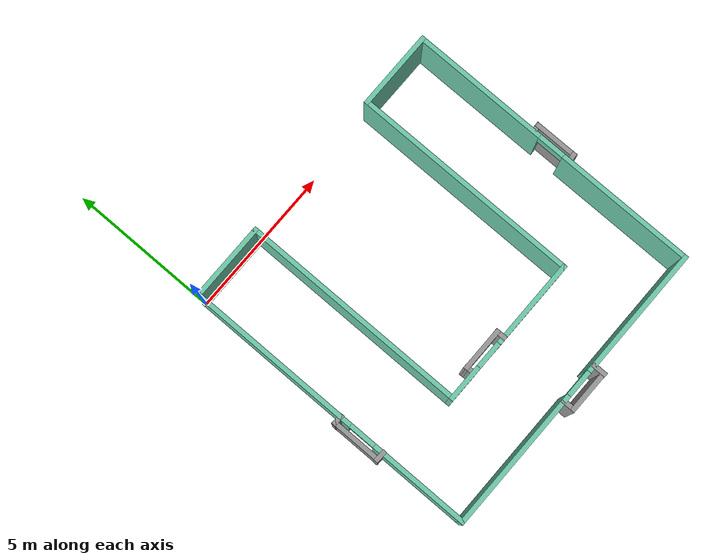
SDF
<?xml version='1.0'?>
<sdf version='1.6'>
  <model name='UShapedWorldDoor'>
    <pose frame=''>4.99392 -5.18388 0 0 -0 0</pose>
    <link name='Wall_1'>
      <pose frame=''>0.00608 -4.81612 0 0 -0 0</pose>
      <visual name='Wall_1_Visual_0'>
        <pose frame=''>-2.66965 0 1.25 0 -0 0</pose>
        <geometry>
          <box>
            <size>4.8107 0.15 2.5</size>
          </box>
        </geometry>
        <material>
          <script>
            <uri>file://media/materials/scripts/gazebo.material</uri>
            <name>Gazebo/Grey</name>
          </script>
          <ambient>0.435294 0.796078 0.67451 1</ambient>
        </material>
        <meta>
          <layer>0</layer>
        </meta>
      </visual>
      <collision name='Wall_1_Collision_0'>
        <geometry>
          <box>
            <size>4.8107 0.15 2.5</size>
          </box>
        </geometry>
        <pose frame=''>-2.66965 0 1.25 0 -0 0</pose>
      </collision>
      <visual name='Wall_1_Visual_1'>
        <pose frame=''>2.85535 0 1.25 0 -0 0</pose>
        <geometry>
          <box>
            <size>4.4393 0.15 2.5</size>
          </box>
        </geometry>
        <material>
          <script>
            <uri>file://media/materials/scripts/gazebo.material</uri>
            <name>Gazebo/Grey</name>
          </script>
          <ambient>0.435294 0.796078 0.67451 1</ambient>
        </material>
        <meta>
          <layer>0</layer>
        </meta>
      </visual>
      <collision name='Wall_1_Collision_1'>
        <geometry>
          <box>
            <size>4.4393 0.15 2.5</size>
          </box>
        </geometry>
        <pose frame=''>2.85535 0 1.25 0 -0 0</pose>
      </collision>
      <visual name='Wall_1_Visual_2'>
        <pose frame=''>0.185702 0 2.25 0 -0 0</pose>
        <geometry>
          <box>
            <size>0.9 0.15 0.5</size>
          </box>
        </geometry>
        <material>
          <script>
            <uri>file://media/materials/scripts/gazebo.material</uri>
            <name>Gazebo/Grey</name>
          </script>
          <ambient>0.435294 0.796078 0.67451 1</ambient>
        </material>
        <meta>
          <layer>0</layer>
        </meta>
      </visual>
      <collision name='Wall_1_Collision_2'>
        <geometry>
          <box>
            <size>0.9 0.15 0.5</size>
          </box>
        </geometry>
        <pose frame=''>0.185702 0 2.25 0 -0 0</pose>
      </collision>
    </link>
    <link name='Wall_10'>
      <pose frame=''>0.00608 -2.31612 0 0 -0 0</pose>
      <visual name='Wall_10_Visual_0'>
        <pose frame=''>-1.95323 0 1.25 0 -0 0</pose>
        <geometry>
          <box>
            <size>1.24454 0.15 2.5</size>
          </box>
        </geometry>
        <material>
          <script>
            <uri>file://media/materials/scripts/gazebo.material</uri>
            <name>Gazebo/Grey</name>
          </script>
          <ambient>0.435294 0.796078 0.67451 1</ambient>
        </material>
        <meta>
          <layer>0</layer>
        </meta>
      </visual>
      <collision name='Wall_10_Collision_0'>
        <geometry>
          <box>
            <size>1.24454 0.15 2.5</size>
          </box>
        </geometry>
        <pose frame=''>-1.95323 0 1.25 0 -0 0</pose>
      </collision>
      <visual name='Wall_10_Visual_1'>
        <pose frame=''>1.07227 0 1.25 0 -0 0</pose>
        <geometry>
          <box>
            <size>3.00646 0.15 2.5</size>
          </box>
        </geometry>
        <material>
          <script>
            <uri>file://media/materials/scripts/gazebo.material</uri>
            <name>Gazebo/Grey</name>
          </script>
          <ambient>0.435294 0.796078 0.67451 1</ambient>
        </material>
        <meta>
          <layer>0</layer>
        </meta>
      </visual>
      <collision name='Wall_10_Collision_1'>
        <geometry>
          <box>
            <size>3.00646 0.15 2.5</size>
          </box>
        </geometry>
        <pose frame=''>1.07227 0 1.25 0 -0 0</pose>
      </collision>
      <visual name='Wall_10_Visual_2'>
        <pose frame=''>-0.880964 0 2.25 0 -0 0</pose>
        <geometry>
          <box>
            <size>0.9 0.15 0.5</size>
          </box>
        </geometry>
        <material>
          <script>
            <uri>file://media/materials/scripts/gazebo.material</uri>
            <name>Gazebo/Grey</name>
          </script>
          <ambient>0.435294 0.796078 0.67451 1</ambient>
        </material>
        <meta>
          <layer>0</layer>
        </meta>
      </visual>
      <collision name='Wall_10_Collision_2'>
        <geometry>
          <box>
            <size>0.9 0.15 0.5</size>
          </box>
        </geometry>
        <pose frame=''>-0.880964 0 2.25 0 -0 0</pose>
      </collision>
    </link>
    <link name='Wall_11'>
      <collision name='Wall_11_Collision'>
        <geometry>
          <box>
            <size>7.65 0.15 2.5</size>
          </box>
        </geometry>
        <pose frame=''>0 0 1.25 0 -0 0</pose>
      </collision>
      <visual name='Wall_11_Visual'>
        <pose frame=''>0 0 1.25 0 -0 0</pose>
        <geometry>
          <box>
            <size>7.65 0.15 2.5</size>
          </box>
        </geometry>
        <material>
          <script>
            <uri>file://media/materials/scripts/gazebo.material</uri>
            <name>Gazebo/Grey</name>
          </script>
          <ambient>0.435294 0.796078 0.67451 1</ambient>
        </material>
        <meta>
          <layer>0</layer>
        </meta>
      </visual>
      <pose frame=''>2.50608 1.43388 0 0 -0 1.5708</pose>
    </link>
    <link name='Wall_15'>
      <collision name='Wall_15_Collision'>
        <geometry>
          <box>
            <size>0.402622 0.15 2.5</size>
          </box>
        </geometry>
        <pose frame=''>0 0 1.25 0 -0 0</pose>
      </collision>
      <visual name='Wall_15_Visual'>
        <pose frame=''>0 0 1.25 0 -0 0</pose>
        <geometry>
          <box>
            <size>0.402622 0.15 2.5</size>
          </box>
        </geometry>
        <material>
          <script>
            <uri>file://media/materials/scripts/gazebo.material</uri>
            <name>Gazebo/Grey</name>
          </script>
          <ambient>1 1 1 1</ambient>
        </material>
        <meta>
          <layer>0</layer>
        </meta>
      </visual>
      <pose frame=''>-5.10881 -1.82549 0 0 -0 3.10649</pose>
    </link>
    <link name='Wall_16'>
      <collision name='Wall_16_Collision'>
        <geometry>
          <box>
            <size>1.75 0.15 2.5</size>
          </box>
        </geometry>
        <pose frame=''>0 0 1.25 0 -0 0</pose>
      </collision>
      <visual name='Wall_16_Visual'>
        <pose frame=''>0 0 1.25 0 -0 0</pose>
        <geometry>
          <box>
            <size>1.75 0.15 2.5</size>
          </box>
        </geometry>
        <material>
          <script>
            <uri>file://media/materials/scripts/gazebo.material</uri>
            <name>Gazebo/Grey</name>
          </script>
          <ambient>1 1 1 1</ambient>
        </material>
        <meta>
          <layer>0</layer>
        </meta>
      </visual>
      <pose frame=''>-5.22618 -1.02549 0 0 -0 1.5708</pose>
    </link>
    <link name='Wall_17'>
      <collision name='Wall_17_Collision'>
        <geometry>
          <box>
            <size>0.402622 0.15 2.5</size>
          </box>
        </geometry>
        <pose frame=''>0 0 1.25 0 -0 0</pose>
      </collision>
      <visual name='Wall_17_Visual'>
        <pose frame=''>0 0 1.25 0 -0 0</pose>
        <geometry>
          <box>
            <size>0.402622 0.15 2.5</size>
          </box>
        </geometry>
        <material>
          <script>
            <uri>file://media/materials/scripts/gazebo.material</uri>
            <name>Gazebo/Grey</name>
          </script>
          <ambient>1 1 1 1</ambient>
        </material>
        <meta>
          <layer>0</layer>
        </meta>
      </visual>
      <pose frame=''>-5.10881 -0.225492 0 0 0 -0.035106</pose>
    </link>
    <link name='Wall_19'>
      <collision name='Wall_19_Collision'>
        <geometry>
          <box>
            <size>0.406319 0.15 2.5</size>
          </box>
        </geometry>
        <pose frame=''>0 0 1.25 0 -0 0</pose>
      </collision>
      <visual name='Wall_19_Visual'>
        <pose frame=''>0 0 1.25 0 -0 0</pose>
        <geometry>
          <box>
            <size>0.406319 0.15 2.5</size>
          </box>
        </geometry>
        <material>
          <script>
            <uri>file://media/materials/scripts/gazebo.material</uri>
            <name>Gazebo/Grey</name>
          </script>
          <ambient>1 1 1 1</ambient>
        </material>
        <meta>
          <layer>0</layer>
        </meta>
      </visual>
      <pose frame=''>-1.54648 -2.18994 0 0 -0 1.59046</pose>
    </link>
    <link name='Wall_20'>
      <collision name='Wall_20_Collision'>
        <geometry>
          <box>
            <size>1.5 0.15 2.5</size>
          </box>
        </geometry>
        <pose frame=''>0 0 1.25 0 -0 0</pose>
      </collision>
      <visual name='Wall_20_Visual'>
        <pose frame=''>0 0 1.25 0 -0 0</pose>
        <geometry>
          <box>
            <size>1.5 0.15 2.5</size>
          </box>
        </geometry>
        <material>
          <script>
            <uri>file://media/materials/scripts/gazebo.material</uri>
            <name>Gazebo/Grey</name>
          </script>
          <ambient>1 1 1 1</ambient>
        </material>
        <meta>
          <layer>0</layer>
        </meta>
      </visual>
      <pose frame=''>-0.874004 -2.06684 0 0 -0 0</pose>
    </link>
    <link name='Wall_21'>
      <collision name='Wall_21_Collision'>
        <geometry>
          <box>
            <size>0.406319 0.15 2.5</size>
          </box>
        </geometry>
        <pose frame=''>0 0 1.25 0 -0 0</pose>
      </collision>
      <visual name='Wall_21_Visual'>
        <pose frame=''>0 0 1.25 0 -0 0</pose>
        <geometry>
          <box>
            <size>0.406319 0.15 2.5</size>
          </box>
        </geometry>
        <material>
          <script>
            <uri>file://media/materials/scripts/gazebo.material</uri>
            <name>Gazebo/Grey</name>
          </script>
          <ambient>1 1 1 1</ambient>
        </material>
        <meta>
          <layer>0</layer>
        </meta>
      </visual>
      <pose frame=''>-0.196483 -2.18994 0 0 0 -1.55113</pose>
    </link>
    <link name='Wall_23'>
      <collision name='Wall_23_Collision'>
        <geometry>
          <box>
            <size>0.501903 0.15 2.5</size>
          </box>
        </geometry>
        <pose frame=''>0 0 1.25 0 -0 0</pose>
      </collision>
      <visual name='Wall_23_Visual'>
        <pose frame=''>0 0 1.25 0 -0 0</pose>
        <geometry>
          <box>
            <size>0.501903 0.15 2.5</size>
          </box>
        </geometry>
        <material>
          <script>
            <uri>file://media/materials/scripts/gazebo.material</uri>
            <name>Gazebo/Grey</name>
          </script>
          <ambient>1 1 1 1</ambient>
        </material>
        <meta>
          <layer>0</layer>
        </meta>
      </visual>
      <pose frame=''>-0.478194 -4.99467 0 0 0 -1.5708</pose>
    </link>
    <link name='Wall_24'>
      <collision name='Wall_24_Collision'>
        <geometry>
          <box>
            <size>1.5 0.15 2.5</size>
          </box>
        </geometry>
        <pose frame=''>0 0 1.25 0 -0 0</pose>
      </collision>
      <visual name='Wall_24_Visual'>
        <pose frame=''>0 0 1.25 0 -0 0</pose>
        <geometry>
          <box>
            <size>1.5 0.15 2.5</size>
          </box>
        </geometry>
        <material>
          <script>
            <uri>file://media/materials/scripts/gazebo.material</uri>
            <name>Gazebo/Grey</name>
          </script>
          <ambient>1 1 1 1</ambient>
        </material>
        <meta>
          <layer>0</layer>
        </meta>
      </visual>
      <pose frame=''>0.196806 -5.17062 0 0 -0 0</pose>
    </link>
    <link name='Wall_25'>
      <collision name='Wall_25_Collision'>
        <geometry>
          <box>
            <size>0.5 0.15 2.5</size>
          </box>
        </geometry>
        <pose frame=''>0 0 1.25 0 -0 0</pose>
      </collision>
      <visual name='Wall_25_Visual'>
        <pose frame=''>0 0 1.25 0 -0 0</pose>
        <geometry>
          <box>
            <size>0.5 0.15 2.5</size>
          </box>
        </geometry>
        <material>
          <script>
            <uri>file://media/materials/scripts/gazebo.material</uri>
            <name>Gazebo/Grey</name>
          </script>
          <ambient>1 1 1 1</ambient>
        </material>
        <meta>
          <layer>0</layer>
        </meta>
      </visual>
      <pose frame=''>0.871806 -5.00888 0 0 -0 1.5708</pose>
    </link>
    <link name='Wall_3'>
      <collision name='Wall_3_Collision'>
        <geometry>
          <box>
            <size>2.65 0.15 2.5</size>
          </box>
        </geometry>
        <pose frame=''>0 0 1.25 0 -0 0</pose>
      </collision>
      <visual name='Wall_3_Visual'>
        <pose frame=''>0 0 1.25 0 -0 0</pose>
        <geometry>
          <box>
            <size>2.65 0.15 2.5</size>
          </box>
        </geometry>
        <material>
          <script>
            <uri>file://media/materials/scripts/gazebo.material</uri>
            <name>Gazebo/Grey</name>
          </script>
          <ambient>0.435294 0.796078 0.67451 1</ambient>
        </material>
        <meta>
          <layer>0</layer>
        </meta>
      </visual>
      <pose frame=''>3.75608 5.18388 0 0 -0 0</pose>
    </link>
    <link name='Wall_4'>
      <pose frame=''>5.00608 0.183876 0 0 0 -1.5708</pose>
      <visual name='Wall_4_Visual_0'>
        <pose frame=''>-2.78667 0 1.25 0 -0 0</pose>
        <geometry>
          <box>
            <size>4.57667 0.15 2.5</size>
          </box>
        </geometry>
        <material>
          <script>
            <uri>file://media/materials/scripts/gazebo.material</uri>
            <name>Gazebo/Grey</name>
          </script>
          <ambient>0.435294 0.796078 0.67451 1</ambient>
        </material>
        <meta>
          <layer>0</layer>
        </meta>
      </visual>
      <collision name='Wall_4_Collision_0'>
        <geometry>
          <box>
            <size>4.57667 0.15 2.5</size>
          </box>
        </geometry>
        <pose frame=''>-2.78667 0 1.25 0 -0 0</pose>
      </collision>
      <visual name='Wall_4_Visual_1'>
        <pose frame=''>2.73834 0 1.25 0 -0 0</pose>
        <geometry>
          <box>
            <size>4.67333 0.15 2.5</size>
          </box>
        </geometry>
        <material>
          <script>
            <uri>file://media/materials/scripts/gazebo.material</uri>
            <name>Gazebo/Grey</name>
          </script>
          <ambient>0.435294 0.796078 0.67451 1</ambient>
        </material>
        <meta>
          <layer>0</layer>
        </meta>
      </visual>
      <collision name='Wall_4_Collision_1'>
        <geometry>
          <box>
            <size>4.67333 0.15 2.5</size>
          </box>
        </geometry>
        <pose frame=''>2.73834 0 1.25 0 -0 0</pose>
      </collision>
      <visual name='Wall_4_Visual_2'>
        <pose frame=''>-0.04833 0 2.25 0 -0 0</pose>
        <geometry>
          <box>
            <size>0.9 0.15 0.5</size>
          </box>
        </geometry>
        <material>
          <script>
            <uri>file://media/materials/scripts/gazebo.material</uri>
            <name>Gazebo/Grey</name>
          </script>
          <ambient>0.435294 0.796078 0.67451 1</ambient>
        </material>
        <meta>
          <layer>0</layer>
        </meta>
      </visual>
      <collision name='Wall_4_Collision_2'>
        <geometry>
          <box>
            <size>0.9 0.15 0.5</size>
          </box>
        </geometry>
        <pose frame=''>-0.04833 0 2.25 0 -0 0</pose>
      </collision>
    </link>
    <link name='Wall_6'>
      <pose frame=''>-4.99392 0.183876 0 0 -0 1.5708</pose>
      <visual name='Wall_6_Visual_0'>
        <pose frame=''>-3.38122 0 1.25 0 -0 0</pose>
        <geometry>
          <box>
            <size>3.38757 0.15 2.5</size>
          </box>
        </geometry>
        <material>
          <script>
            <uri>file://media/materials/scripts/gazebo.material</uri>
            <name>Gazebo/Grey</name>
          </script>
          <ambient>0.435294 0.796078 0.67451 1</ambient>
        </material>
        <meta>
          <layer>0</layer>
        </meta>
      </visual>
      <collision name='Wall_6_Collision_0'>
        <geometry>
          <box>
            <size>3.38757 0.15 2.5</size>
          </box>
        </geometry>
        <pose frame=''>-3.38122 0 1.25 0 -0 0</pose>
      </collision>
      <visual name='Wall_6_Visual_1'>
        <pose frame=''>2.14378 0 1.25 0 -0 0</pose>
        <geometry>
          <box>
            <size>5.86243 0.15 2.5</size>
          </box>
        </geometry>
        <material>
          <script>
            <uri>file://media/materials/scripts/gazebo.material</uri>
            <name>Gazebo/Grey</name>
          </script>
          <ambient>0.435294 0.796078 0.67451 1</ambient>
        </material>
        <meta>
          <layer>0</layer>
        </meta>
      </visual>
      <collision name='Wall_6_Collision_1'>
        <geometry>
          <box>
            <size>5.86243 0.15 2.5</size>
          </box>
        </geometry>
        <pose frame=''>2.14378 0 1.25 0 -0 0</pose>
      </collision>
      <visual name='Wall_6_Visual_2'>
        <pose frame=''>-1.23743 0 2.25 0 -0 0</pose>
        <geometry>
          <box>
            <size>0.9 0.15 0.5</size>
          </box>
        </geometry>
        <material>
          <script>
            <uri>file://media/materials/scripts/gazebo.material</uri>
            <name>Gazebo/Grey</name>
          </script>
          <ambient>0.435294 0.796078 0.67451 1</ambient>
        </material>
        <meta>
          <layer>0</layer>
        </meta>
      </visual>
      <collision name='Wall_6_Collision_2'>
        <geometry>
          <box>
            <size>0.9 0.15 0.5</size>
          </box>
        </geometry>
        <pose frame=''>-1.23743 0 2.25 0 -0 0</pose>
      </collision>
    </link>
    <link name='Wall_61'>
      <collision name='Wall_61_Collision'>
        <geometry>
          <box>
            <size>0.358177 0.15 2.5</size>
          </box>
        </geometry>
        <pose frame=''>0 0 1.25 0 -0 0</pose>
      </collision>
      <visual name='Wall_61_Visual'>
        <pose frame=''>0 0 1.25 0 -0 0</pose>
        <geometry>
          <box>
            <size>0.358177 0.15 2.5</size>
          </box>
        </geometry>
        <material>
          <script>
            <uri>file://media/materials/scripts/gazebo.material</uri>
            <name>Gazebo/Grey</name>
          </script>
          <ambient>1 1 1 1</ambient>
        </material>
        <meta>
          <layer>0</layer>
        </meta>
      </visual>
      <pose frame=''>5.12347 -0.434342 0 0 -0 0.169257</pose>
    </link>
    <link name='Wall_62'>
      <collision name='Wall_62_Collision'>
        <geometry>
          <box>
            <size>1.5 0.15 2.5</size>
          </box>
        </geometry>
        <pose frame=''>0 0 1.25 0 -0 0</pose>
      </collision>
      <visual name='Wall_62_Visual'>
        <pose frame=''>0 0 1.25 0 -0 0</pose>
        <geometry>
          <box>
            <size>1.5 0.15 2.5</size>
          </box>
        </geometry>
        <material>
          <script>
            <uri>file://media/materials/scripts/gazebo.material</uri>
            <name>Gazebo/Grey</name>
          </script>
          <ambient>1 1 1 1</ambient>
        </material>
        <meta>
          <layer>0</layer>
        </meta>
      </visual>
      <pose frame=''>5.22607 0.240657 0 0 -0 1.5708</pose>
    </link>
    <link name='Wall_63'>
      <collision name='Wall_63_Collision'>
        <geometry>
          <box>
            <size>0.15 0.15 2.5</size>
          </box>
        </geometry>
        <pose frame=''>0 0 1.25 0 -0 0</pose>
      </collision>
      <visual name='Wall_63_Visual'>
        <pose frame=''>0 0 1.25 0 -0 0</pose>
        <geometry>
          <box>
            <size>0.15 0.15 2.5</size>
          </box>
        </geometry>
        <material>
          <script>
            <uri>file://media/materials/scripts/gazebo.material</uri>
            <name>Gazebo/Grey</name>
          </script>
          <ambient>1 1 1 1</ambient>
        </material>
        <meta>
          <layer>0</layer>
        </meta>
      </visual>
      <pose frame=''>5.22607 0.933191 0 0 -0 0</pose>
    </link>
    <link name='Wall_64'>
      <collision name='Wall_64_Collision'>
        <geometry>
          <box>
            <size>0.15 0.15 2.5</size>
          </box>
        </geometry>
        <pose frame=''>0 0 1.25 0 -0 0</pose>
      </collision>
      <visual name='Wall_64_Visual'>
        <pose frame=''>0 0 1.25 0 -0 0</pose>
        <geometry>
          <box>
            <size>0.15 0.15 2.5</size>
          </box>
        </geometry>
        <material>
          <script>
            <uri>file://media/materials/scripts/gazebo.material</uri>
            <name>Gazebo/Grey</name>
          </script>
          <ambient>1 1 1 1</ambient>
        </material>
        <meta>
          <layer>0</layer>
        </meta>
      </visual>
      <pose frame=''>5.22607 0.933191 0 0 -0 0</pose>
    </link>
    <link name='Wall_66'>
      <collision name='Wall_66_Collision'>
        <geometry>
          <box>
            <size>0.167534 0.15 2.5</size>
          </box>
        </geometry>
        <pose frame=''>0 0 1.25 0 -0 0</pose>
      </collision>
      <visual name='Wall_66_Visual'>
        <pose frame=''>0 0 1.25 0 -0 0</pose>
        <geometry>
          <box>
            <size>0.167534 0.15 2.5</size>
          </box>
        </geometry>
        <material>
          <script>
            <uri>file://media/materials/scripts/gazebo.material</uri>
            <name>Gazebo/Grey</name>
          </script>
          <ambient>1 1 1 1</ambient>
        </material>
        <meta>
          <layer>0</layer>
        </meta>
      </visual>
      <pose frame=''>5.22607 0.924424 0 0 0 -1.5708</pose>
    </link>
    <link name='Wall_67'>
      <collision name='Wall_67_Collision'>
        <geometry>
          <box>
            <size>0.25 0.15 2.5</size>
          </box>
        </geometry>
        <pose frame=''>0 0 1.25 0 -0 0</pose>
      </collision>
      <visual name='Wall_67_Visual'>
        <pose frame=''>0 0 1.25 0 -0 0</pose>
        <geometry>
          <box>
            <size>0.25 0.15 2.5</size>
          </box>
        </geometry>
        <material>
          <script>
            <uri>file://media/materials/scripts/gazebo.material</uri>
            <name>Gazebo/Grey</name>
          </script>
          <ambient>1 1 1 1</ambient>
        </material>
        <meta>
          <layer>0</layer>
        </meta>
      </visual>
      <pose frame=''>5.17607 0.915658 0 0 -0 3.14159</pose>
    </link>
    <link name='Wall_7'>
      <collision name='Wall_7_Collision'>
        <geometry>
          <box>
            <size>2.65007 0.15 2.5</size>
          </box>
        </geometry>
        <pose frame=''>0 0 1.25 0 -0 0</pose>
      </collision>
      <visual name='Wall_7_Visual'>
        <pose frame=''>0 0 1.25 0 -0 0</pose>
        <geometry>
          <box>
            <size>2.65007 0.15 2.5</size>
          </box>
        </geometry>
        <material>
          <script>
            <uri>file://media/materials/scripts/gazebo.material</uri>
            <name>Gazebo/Grey</name>
          </script>
          <ambient>0.435294 0.796078 0.67451 1</ambient>
        </material>
        <meta>
          <layer>0</layer>
        </meta>
      </visual>
      <pose frame=''>-3.74392 5.18388 0 0 -0 0</pose>
    </link>
    <link name='Wall_9'>
      <collision name='Wall_9_Collision'>
        <geometry>
          <box>
            <size>7.65 0.15 2.5</size>
          </box>
        </geometry>
        <pose frame=''>0 0 1.25 0 -0 0</pose>
      </collision>
      <visual name='Wall_9_Visual'>
        <pose frame=''>0 0 1.25 0 -0 0</pose>
        <geometry>
          <box>
            <size>7.65 0.15 2.5</size>
          </box>
        </geometry>
        <material>
          <script>
            <uri>file://media/materials/scripts/gazebo.material</uri>
            <name>Gazebo/Grey</name>
          </script>
          <ambient>0.435294 0.796078 0.67451 1</ambient>
        </material>
        <meta>
          <layer>0</layer>
        </meta>
      </visual>
      <pose frame=''>-2.49392 1.43388 0 0 0 -1.5708</pose>
    </link>
    <static>1</static>
  </model>
</sdf>
